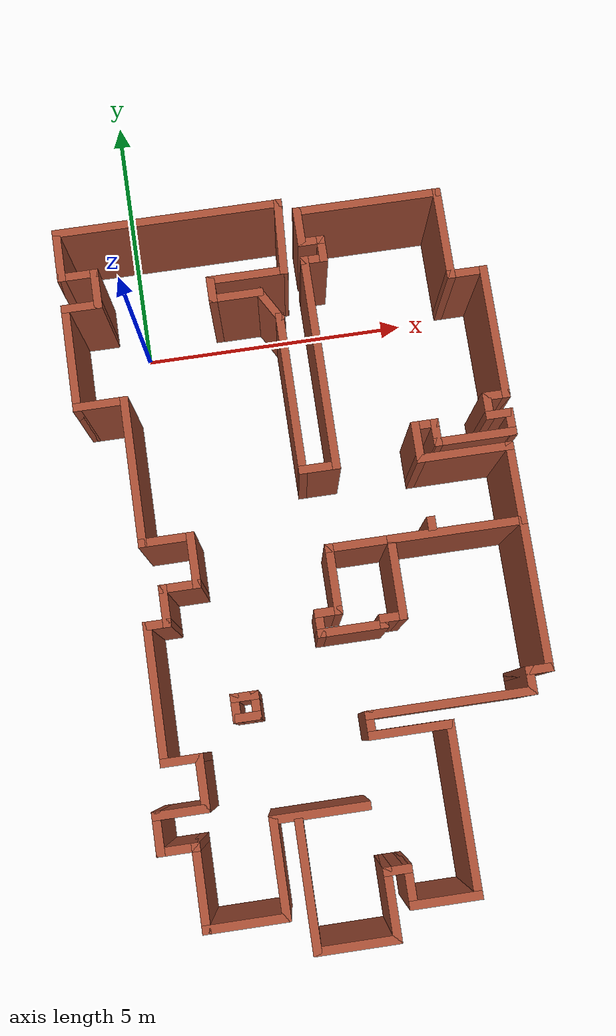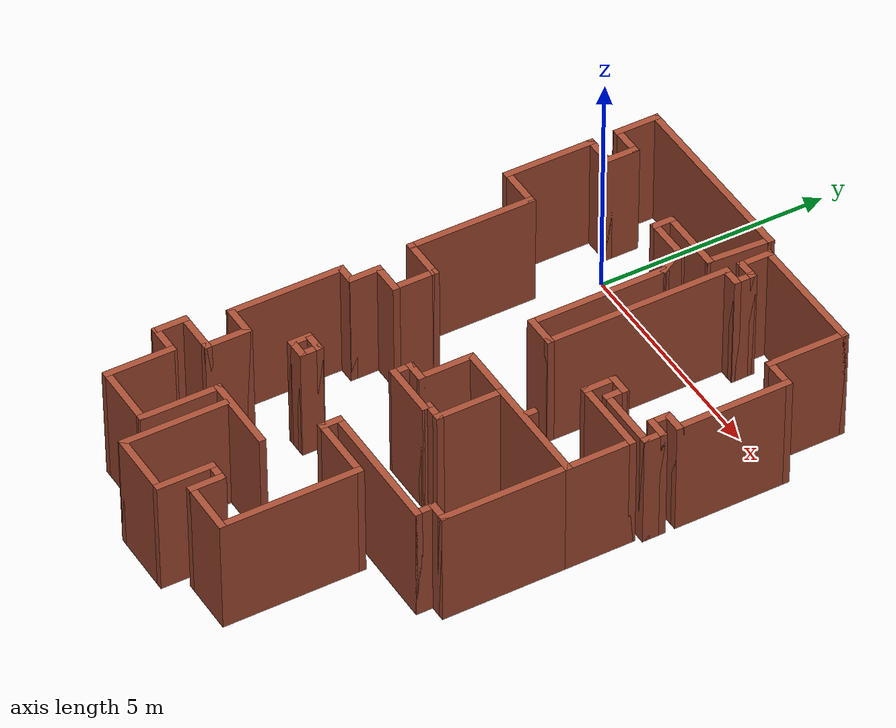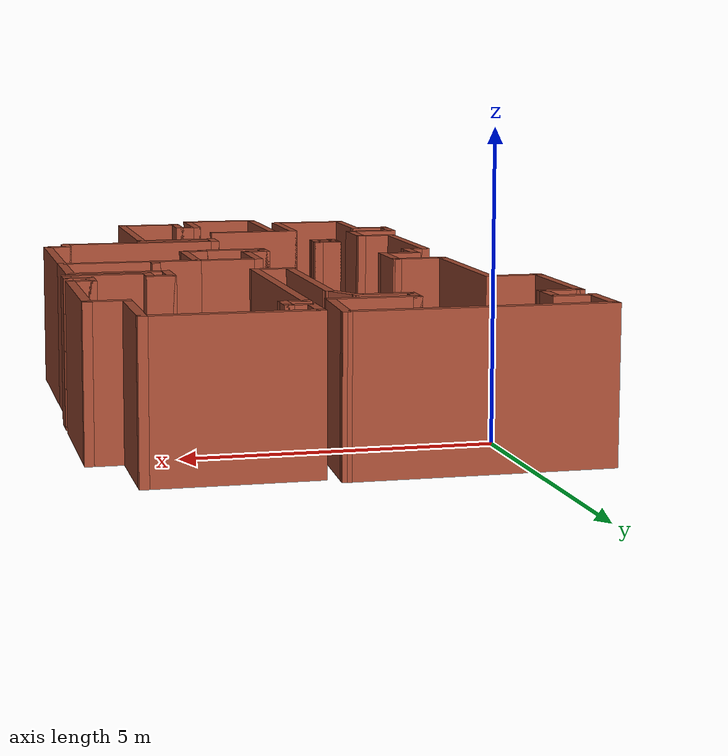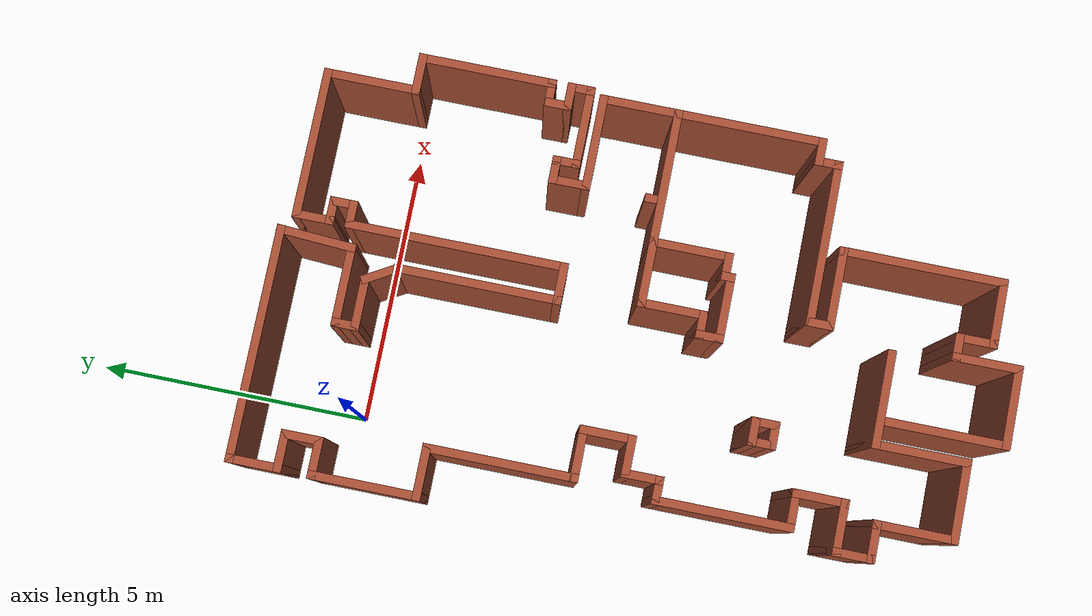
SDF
<?xml version='1.0'?>
<sdf version='1.6'>
  <model name='map_80'>
    <pose frame=''>2.57152 -4.62871 0 0 -0 0</pose>
    <link name='Wall_0'>
      <collision name='Wall_0_Collision'>
        <geometry>
          <box>
            <size>4.25 0.15 2.5</size>
          </box>
        </geometry>
        <pose frame=''>0 0 1.25 0 -0 0</pose>
      </collision>
      <visual name='Wall_0_Visual'>
        <pose frame=''>0 0 1.25 0 -0 0</pose>
        <geometry>
          <box>
            <size>4.25 0.15 2.5</size>
          </box>
        </geometry>
        <material>
          <script>
            <uri>file://media/materials/scripts/gazebo.material</uri>
            <name>Gazebo/Bricks</name>
          </script>
          <ambient>1 1 1 1</ambient>
        </material>
        <meta>
          <layer>0</layer>
        </meta>
      </visual>
      <pose frame=''>-1.76204 6.55295 0 0 -0 3.14159</pose>
    </link>
    <link name='Wall_1'>
      <collision name='Wall_1_Collision'>
        <geometry>
          <box>
            <size>1 0.15 2.5</size>
          </box>
        </geometry>
        <pose frame=''>0 0 1.25 0 -0 0</pose>
      </collision>
      <visual name='Wall_1_Visual'>
        <pose frame=''>0 0 1.25 0 -0 0</pose>
        <geometry>
          <box>
            <size>1 0.15 2.5</size>
          </box>
        </geometry>
        <material>
          <script>
            <uri>file://media/materials/scripts/gazebo.material</uri>
            <name>Gazebo/Bricks</name>
          </script>
          <ambient>1 1 1 1</ambient>
        </material>
        <meta>
          <layer>0</layer>
        </meta>
      </visual>
      <pose frame=''>-3.81204 6.12795 0 0 -0 -1.5708</pose>
    </link>
    <link name='Wall_10'>
      <collision name='Wall_10_Collision'>
        <geometry>
          <box>
            <size>0.75 0.15 2.5</size>
          </box>
        </geometry>
        <pose frame=''>0 0 1.25 0 -0 0</pose>
      </collision>
      <visual name='Wall_10_Visual'>
        <pose frame=''>0 0 1.25 0 -0 0</pose>
        <geometry>
          <box>
            <size>0.75 0.15 2.5</size>
          </box>
        </geometry>
        <material>
          <script>
            <uri>file://media/materials/scripts/gazebo.material</uri>
            <name>Gazebo/Bricks</name>
          </script>
          <ambient>1 1 1 1</ambient>
        </material>
        <meta>
          <layer>0</layer>
        </meta>
      </visual>
      <pose frame=''>-2.41204 -0.197053 0 0 -0 3.14159</pose>
    </link>
    <link name='Wall_104'>
      <collision name='Wall_104_Collision'>
        <geometry>
          <box>
            <size>0.25 0.15 2.5</size>
          </box>
        </geometry>
        <pose frame=''>0 0 1.25 0 -0 0</pose>
      </collision>
      <visual name='Wall_104_Visual'>
        <pose frame=''>0 0 1.25 0 -0 0</pose>
        <geometry>
          <box>
            <size>0.25 0.15 2.5</size>
          </box>
        </geometry>
        <material>
          <script>
            <uri>file://media/materials/scripts/gazebo.material</uri>
            <name>Gazebo/Bricks</name>
          </script>
          <ambient>1 1 1 1</ambient>
        </material>
        <meta>
          <layer>0</layer>
        </meta>
      </visual>
      <pose frame=''>1.01204 -1.30722 0 0 -0 -1.5708</pose>
    </link>
    <link name='Wall_105'>
      <collision name='Wall_105_Collision'>
        <geometry>
          <box>
            <size>1.25 0.15 2.5</size>
          </box>
        </geometry>
        <pose frame=''>0 0 1.25 0 -0 0</pose>
      </collision>
      <visual name='Wall_105_Visual'>
        <pose frame=''>0 0 1.25 0 -0 0</pose>
        <geometry>
          <box>
            <size>1.25 0.15 2.5</size>
          </box>
        </geometry>
        <material>
          <script>
            <uri>file://media/materials/scripts/gazebo.material</uri>
            <name>Gazebo/Bricks</name>
          </script>
          <ambient>1 1 1 1</ambient>
        </material>
        <meta>
          <layer>0</layer>
        </meta>
      </visual>
      <pose frame=''>0.462039 -1.35722 0 0 -0 3.14159</pose>
    </link>
    <link name='Wall_106'>
      <collision name='Wall_106_Collision'>
        <geometry>
          <box>
            <size>0.5 0.15 2.5</size>
          </box>
        </geometry>
        <pose frame=''>0 0 1.25 0 -0 0</pose>
      </collision>
      <visual name='Wall_106_Visual'>
        <pose frame=''>0 0 1.25 0 -0 0</pose>
        <geometry>
          <box>
            <size>0.5 0.15 2.5</size>
          </box>
        </geometry>
        <material>
          <script>
            <uri>file://media/materials/scripts/gazebo.material</uri>
            <name>Gazebo/Bricks</name>
          </script>
          <ambient>1 1 1 1</ambient>
        </material>
        <meta>
          <layer>0</layer>
        </meta>
      </visual>
      <pose frame=''>-0.087961 -1.18222 0 0 -0 1.5708</pose>
    </link>
    <link name='Wall_107'>
      <collision name='Wall_107_Collision'>
        <geometry>
          <box>
            <size>0.5 0.15 2.5</size>
          </box>
        </geometry>
        <pose frame=''>0 0 1.25 0 -0 0</pose>
      </collision>
      <visual name='Wall_107_Visual'>
        <pose frame=''>0 0 1.25 0 -0 0</pose>
        <geometry>
          <box>
            <size>0.5 0.15 2.5</size>
          </box>
        </geometry>
        <material>
          <script>
            <uri>file://media/materials/scripts/gazebo.material</uri>
            <name>Gazebo/Bricks</name>
          </script>
          <ambient>1 1 1 1</ambient>
        </material>
        <meta>
          <layer>0</layer>
        </meta>
      </visual>
      <pose frame=''>0.087039 -1.00722 0 0 -0 0</pose>
    </link>
    <link name='Wall_108'>
      <collision name='Wall_108_Collision'>
        <geometry>
          <box>
            <size>1.25 0.15 2.5</size>
          </box>
        </geometry>
        <pose frame=''>0 0 1.25 0 -0 0</pose>
      </collision>
      <visual name='Wall_108_Visual'>
        <pose frame=''>0 0 1.25 0 -0 0</pose>
        <geometry>
          <box>
            <size>1.25 0.15 2.5</size>
          </box>
        </geometry>
        <material>
          <script>
            <uri>file://media/materials/scripts/gazebo.material</uri>
            <name>Gazebo/Bricks</name>
          </script>
          <ambient>1 1 1 1</ambient>
        </material>
        <meta>
          <layer>0</layer>
        </meta>
      </visual>
      <pose frame=''>0.262039 -0.457222 0 0 -0 1.5708</pose>
    </link>
    <link name='Wall_11'>
      <collision name='Wall_11_Collision'>
        <geometry>
          <box>
            <size>0.75 0.15 2.5</size>
          </box>
        </geometry>
        <pose frame=''>0 0 1.25 0 -0 0</pose>
      </collision>
      <visual name='Wall_11_Visual'>
        <pose frame=''>0 0 1.25 0 -0 0</pose>
        <geometry>
          <box>
            <size>0.75 0.15 2.5</size>
          </box>
        </geometry>
        <material>
          <script>
            <uri>file://media/materials/scripts/gazebo.material</uri>
            <name>Gazebo/Bricks</name>
          </script>
          <ambient>1 1 1 1</ambient>
        </material>
        <meta>
          <layer>0</layer>
        </meta>
      </visual>
      <pose frame=''>-2.71204 -0.497053 0 0 -0 -1.5708</pose>
    </link>
    <link name='Wall_111'>
      <collision name='Wall_111_Collision'>
        <geometry>
          <box>
            <size>0.25 0.15 2.5</size>
          </box>
        </geometry>
        <pose frame=''>0 0 1.25 0 -0 0</pose>
      </collision>
      <visual name='Wall_111_Visual'>
        <pose frame=''>0 0 1.25 0 -0 0</pose>
        <geometry>
          <box>
            <size>0.25 0.15 2.5</size>
          </box>
        </geometry>
        <material>
          <script>
            <uri>file://media/materials/scripts/gazebo.material</uri>
            <name>Gazebo/Bricks</name>
          </script>
          <ambient>1 1 1 1</ambient>
        </material>
        <meta>
          <layer>0</layer>
        </meta>
      </visual>
      <pose frame=''>2.11528 0.265161 0 0 -0 1.5708</pose>
    </link>
    <link name='Wall_115'>
      <collision name='Wall_115_Collision'>
        <geometry>
          <box>
            <size>0.5 0.15 2.5</size>
          </box>
        </geometry>
        <pose frame=''>0 0 1.25 0 -0 0</pose>
      </collision>
      <visual name='Wall_115_Visual'>
        <pose frame=''>0 0 1.25 0 -0 0</pose>
        <geometry>
          <box>
            <size>0.5 0.15 2.5</size>
          </box>
        </geometry>
        <material>
          <script>
            <uri>file://media/materials/scripts/gazebo.material</uri>
            <name>Gazebo/Bricks</name>
          </script>
          <ambient>1 1 1 1</ambient>
        </material>
        <meta>
          <layer>0</layer>
        </meta>
      </visual>
      <pose frame=''>-1.38328 -2.41168 0 0 -0 1.5708</pose>
    </link>
    <link name='Wall_118'>
      <collision name='Wall_118_Collision'>
        <geometry>
          <box>
            <size>0.5 0.15 2.5</size>
          </box>
        </geometry>
        <pose frame=''>0 0 1.25 0 -0 0</pose>
      </collision>
      <visual name='Wall_118_Visual'>
        <pose frame=''>0 0 1.25 0 -0 0</pose>
        <geometry>
          <box>
            <size>0.5 0.15 2.5</size>
          </box>
        </geometry>
        <material>
          <script>
            <uri>file://media/materials/scripts/gazebo.material</uri>
            <name>Gazebo/Bricks</name>
          </script>
          <ambient>1 1 1 1</ambient>
        </material>
        <meta>
          <layer>0</layer>
        </meta>
      </visual>
      <pose frame=''>-1.55828 -2.23668 0 0 -0 3.14159</pose>
    </link>
    <link name='Wall_119'>
      <collision name='Wall_119_Collision'>
        <geometry>
          <box>
            <size>0.5 0.15 2.5</size>
          </box>
        </geometry>
        <pose frame=''>0 0 1.25 0 -0 0</pose>
      </collision>
      <visual name='Wall_119_Visual'>
        <pose frame=''>0 0 1.25 0 -0 0</pose>
        <geometry>
          <box>
            <size>0.5 0.15 2.5</size>
          </box>
        </geometry>
        <material>
          <script>
            <uri>file://media/materials/scripts/gazebo.material</uri>
            <name>Gazebo/Bricks</name>
          </script>
          <ambient>1 1 1 1</ambient>
        </material>
        <meta>
          <layer>0</layer>
        </meta>
      </visual>
      <pose frame=''>-1.73327 -2.41168 0 0 -0 -1.5708</pose>
    </link>
    <link name='Wall_12'>
      <collision name='Wall_12_Collision'>
        <geometry>
          <box>
            <size>0.5 0.15 2.5</size>
          </box>
        </geometry>
        <pose frame=''>0 0 1.25 0 -0 0</pose>
      </collision>
      <visual name='Wall_12_Visual'>
        <pose frame=''>0 0 1.25 0 -0 0</pose>
        <geometry>
          <box>
            <size>0.5 0.15 2.5</size>
          </box>
        </geometry>
        <material>
          <script>
            <uri>file://media/materials/scripts/gazebo.material</uri>
            <name>Gazebo/Bricks</name>
          </script>
          <ambient>1 1 1 1</ambient>
        </material>
        <meta>
          <layer>0</layer>
        </meta>
      </visual>
      <pose frame=''>-2.88704 -0.797053 0 0 -0 3.14159</pose>
    </link>
    <link name='Wall_120'>
      <collision name='Wall_120_Collision'>
        <geometry>
          <box>
            <size>0.5 0.15 2.5</size>
          </box>
        </geometry>
        <pose frame=''>0 0 1.25 0 -0 0</pose>
      </collision>
      <visual name='Wall_120_Visual'>
        <pose frame=''>0 0 1.25 0 -0 0</pose>
        <geometry>
          <box>
            <size>0.5 0.15 2.5</size>
          </box>
        </geometry>
        <material>
          <script>
            <uri>file://media/materials/scripts/gazebo.material</uri>
            <name>Gazebo/Bricks</name>
          </script>
          <ambient>1 1 1 1</ambient>
        </material>
        <meta>
          <layer>0</layer>
        </meta>
      </visual>
      <pose frame=''>-1.55828 -2.58668 0 0 -0 0</pose>
    </link>
    <link name='Wall_13'>
      <collision name='Wall_13_Collision'>
        <geometry>
          <box>
            <size>2.5 0.15 2.5</size>
          </box>
        </geometry>
        <pose frame=''>0 0 1.25 0 -0 0</pose>
      </collision>
      <visual name='Wall_13_Visual'>
        <pose frame=''>0 0 1.25 0 -0 0</pose>
        <geometry>
          <box>
            <size>2.5 0.15 2.5</size>
          </box>
        </geometry>
        <material>
          <script>
            <uri>file://media/materials/scripts/gazebo.material</uri>
            <name>Gazebo/Bricks</name>
          </script>
          <ambient>1 1 1 1</ambient>
        </material>
        <meta>
          <layer>0</layer>
        </meta>
      </visual>
      <pose frame=''>-3.06204 -1.97205 0 0 -0 -1.5708</pose>
    </link>
    <link name='Wall_2'>
      <collision name='Wall_2_Collision'>
        <geometry>
          <box>
            <size>0.75 0.15 2.5</size>
          </box>
        </geometry>
        <pose frame=''>0 0 1.25 0 -0 0</pose>
      </collision>
      <visual name='Wall_2_Visual'>
        <pose frame=''>0 0 1.25 0 -0 0</pose>
        <geometry>
          <box>
            <size>0.75 0.15 2.5</size>
          </box>
        </geometry>
        <material>
          <script>
            <uri>file://media/materials/scripts/gazebo.material</uri>
            <name>Gazebo/Bricks</name>
          </script>
          <ambient>1 1 1 1</ambient>
        </material>
        <meta>
          <layer>0</layer>
        </meta>
      </visual>
      <pose frame=''>-3.51204 5.70295 0 0 -0 0</pose>
    </link>
    <link name='Wall_21'>
      <collision name='Wall_21_Collision'>
        <geometry>
          <box>
            <size>1.75 0.15 2.5</size>
          </box>
        </geometry>
        <pose frame=''>0 0 1.25 0 -0 0</pose>
      </collision>
      <visual name='Wall_21_Visual'>
        <pose frame=''>0 0 1.25 0 -0 0</pose>
        <geometry>
          <box>
            <size>1.75 0.15 2.5</size>
          </box>
        </geometry>
        <material>
          <script>
            <uri>file://media/materials/scripts/gazebo.material</uri>
            <name>Gazebo/Bricks</name>
          </script>
          <ambient>1 1 1 1</ambient>
        </material>
        <meta>
          <layer>0</layer>
        </meta>
      </visual>
      <pose frame=''>-1.36204 -5.14705 0 0 -0 1.5708</pose>
    </link>
    <link name='Wall_22'>
      <collision name='Wall_22_Collision'>
        <geometry>
          <box>
            <size>1.75 0.15 2.5</size>
          </box>
        </geometry>
        <pose frame=''>0 0 1.25 0 -0 0</pose>
      </collision>
      <visual name='Wall_22_Visual'>
        <pose frame=''>0 0 1.25 0 -0 0</pose>
        <geometry>
          <box>
            <size>1.75 0.15 2.5</size>
          </box>
        </geometry>
        <material>
          <script>
            <uri>file://media/materials/scripts/gazebo.material</uri>
            <name>Gazebo/Bricks</name>
          </script>
          <ambient>1 1 1 1</ambient>
        </material>
        <meta>
          <layer>0</layer>
        </meta>
      </visual>
      <pose frame=''>-0.562039 -4.34705 0 0 -0 0</pose>
    </link>
    <link name='Wall_25'>
      <collision name='Wall_25_Collision'>
        <geometry>
          <box>
            <size>2.25 0.15 2.5</size>
          </box>
        </geometry>
        <pose frame=''>0 0 1.25 0 -0 0</pose>
      </collision>
      <visual name='Wall_25_Visual'>
        <pose frame=''>0 0 1.25 0 -0 0</pose>
        <geometry>
          <box>
            <size>2.25 0.15 2.5</size>
          </box>
        </geometry>
        <material>
          <script>
            <uri>file://media/materials/scripts/gazebo.material</uri>
            <name>Gazebo/Bricks</name>
          </script>
          <ambient>1 1 1 1</ambient>
        </material>
        <meta>
          <layer>0</layer>
        </meta>
      </visual>
      <pose frame=''>-0.937961 -5.50722 0 0 -0 -1.5708</pose>
    </link>
    <link name='Wall_26'>
      <collision name='Wall_26_Collision'>
        <geometry>
          <box>
            <size>1.5 0.15 2.5</size>
          </box>
        </geometry>
        <pose frame=''>0 0 1.25 0 -0 0</pose>
      </collision>
      <visual name='Wall_26_Visual'>
        <pose frame=''>0 0 1.25 0 -0 0</pose>
        <geometry>
          <box>
            <size>1.5 0.15 2.5</size>
          </box>
        </geometry>
        <material>
          <script>
            <uri>file://media/materials/scripts/gazebo.material</uri>
            <name>Gazebo/Bricks</name>
          </script>
          <ambient>1 1 1 1</ambient>
        </material>
        <meta>
          <layer>0</layer>
        </meta>
      </visual>
      <pose frame=''>-0.262961 -6.55722 0 0 -0 0</pose>
    </link>
    <link name='Wall_3'>
      <collision name='Wall_3_Collision'>
        <geometry>
          <box>
            <size>0.75 0.15 2.5</size>
          </box>
        </geometry>
        <pose frame=''>0 0 1.25 0 -0 0</pose>
      </collision>
      <visual name='Wall_3_Visual'>
        <pose frame=''>0 0 1.25 0 -0 0</pose>
        <geometry>
          <box>
            <size>0.75 0.15 2.5</size>
          </box>
        </geometry>
        <material>
          <script>
            <uri>file://media/materials/scripts/gazebo.material</uri>
            <name>Gazebo/Bricks</name>
          </script>
          <ambient>1 1 1 1</ambient>
        </material>
        <meta>
          <layer>0</layer>
        </meta>
      </visual>
      <pose frame=''>-3.21204 5.40295 0 0 -0 -1.5708</pose>
    </link>
    <link name='Wall_32'>
      <collision name='Wall_32_Collision'>
        <geometry>
          <box>
            <size>1.25 0.15 2.5</size>
          </box>
        </geometry>
        <pose frame=''>0 0 1.25 0 -0 0</pose>
      </collision>
      <visual name='Wall_32_Visual'>
        <pose frame=''>0 0 1.25 0 -0 0</pose>
        <geometry>
          <box>
            <size>1.25 0.15 2.5</size>
          </box>
        </geometry>
        <material>
          <script>
            <uri>file://media/materials/scripts/gazebo.material</uri>
            <name>Gazebo/Bricks</name>
          </script>
          <ambient>1 1 1 1</ambient>
        </material>
        <meta>
          <layer>0</layer>
        </meta>
      </visual>
      <pose frame=''>1.31204 -6.05722 0 0 -0 0</pose>
    </link>
    <link name='Wall_33'>
      <collision name='Wall_33_Collision'>
        <geometry>
          <box>
            <size>3 0.15 2.5</size>
          </box>
        </geometry>
        <pose frame=''>0 0 1.25 0 -0 0</pose>
      </collision>
      <visual name='Wall_33_Visual'>
        <pose frame=''>0 0 1.25 0 -0 0</pose>
        <geometry>
          <box>
            <size>3 0.15 2.5</size>
          </box>
        </geometry>
        <material>
          <script>
            <uri>file://media/materials/scripts/gazebo.material</uri>
            <name>Gazebo/Bricks</name>
          </script>
          <ambient>1 1 1 1</ambient>
        </material>
        <meta>
          <layer>0</layer>
        </meta>
      </visual>
      <pose frame=''>1.86204 -4.63222 0 0 -0 1.5708</pose>
    </link>
    <link name='Wall_34'>
      <collision name='Wall_34_Collision'>
        <geometry>
          <box>
            <size>1.5 0.15 2.5</size>
          </box>
        </geometry>
        <pose frame=''>0 0 1.25 0 -0 0</pose>
      </collision>
      <visual name='Wall_34_Visual'>
        <pose frame=''>0 0 1.25 0 -0 0</pose>
        <geometry>
          <box>
            <size>1.5 0.15 2.5</size>
          </box>
        </geometry>
        <material>
          <script>
            <uri>file://media/materials/scripts/gazebo.material</uri>
            <name>Gazebo/Bricks</name>
          </script>
          <ambient>1 1 1 1</ambient>
        </material>
        <meta>
          <layer>0</layer>
        </meta>
      </visual>
      <pose frame=''>1.18704 -3.20722 0 0 -0 3.14159</pose>
    </link>
    <link name='Wall_35'>
      <collision name='Wall_35_Collision'>
        <geometry>
          <box>
            <size>0.5 0.15 2.5</size>
          </box>
        </geometry>
        <pose frame=''>0 0 1.25 0 -0 0</pose>
      </collision>
      <visual name='Wall_35_Visual'>
        <pose frame=''>0 0 1.25 0 -0 0</pose>
        <geometry>
          <box>
            <size>0.5 0.15 2.5</size>
          </box>
        </geometry>
        <material>
          <script>
            <uri>file://media/materials/scripts/gazebo.material</uri>
            <name>Gazebo/Bricks</name>
          </script>
          <ambient>1 1 1 1</ambient>
        </material>
        <meta>
          <layer>0</layer>
        </meta>
      </visual>
      <pose frame=''>0.512039 -3.03222 0 0 -0 1.5708</pose>
    </link>
    <link name='Wall_36'>
      <collision name='Wall_36_Collision'>
        <geometry>
          <box>
            <size>3 0.15 2.5</size>
          </box>
        </geometry>
        <pose frame=''>0 0 1.25 0 -0 0</pose>
      </collision>
      <visual name='Wall_36_Visual'>
        <pose frame=''>0 0 1.25 0 -0 0</pose>
        <geometry>
          <box>
            <size>3 0.15 2.5</size>
          </box>
        </geometry>
        <material>
          <script>
            <uri>file://media/materials/scripts/gazebo.material</uri>
            <name>Gazebo/Bricks</name>
          </script>
          <ambient>1 1 1 1</ambient>
        </material>
        <meta>
          <layer>0</layer>
        </meta>
      </visual>
      <pose frame=''>1.93704 -2.85722 0 0 -0 0</pose>
    </link>
    <link name='Wall_37'>
      <collision name='Wall_37_Collision'>
        <geometry>
          <box>
            <size>0.5 0.15 2.5</size>
          </box>
        </geometry>
        <pose frame=''>0 0 1.25 0 -0 0</pose>
      </collision>
      <visual name='Wall_37_Visual'>
        <pose frame=''>0 0 1.25 0 -0 0</pose>
        <geometry>
          <box>
            <size>0.5 0.15 2.5</size>
          </box>
        </geometry>
        <material>
          <script>
            <uri>file://media/materials/scripts/gazebo.material</uri>
            <name>Gazebo/Bricks</name>
          </script>
          <ambient>1 1 1 1</ambient>
        </material>
        <meta>
          <layer>0</layer>
        </meta>
      </visual>
      <pose frame=''>3.36204 -2.68222 0 0 -0 1.5708</pose>
    </link>
    <link name='Wall_38'>
      <collision name='Wall_38_Collision'>
        <geometry>
          <box>
            <size>0.5 0.15 2.5</size>
          </box>
        </geometry>
        <pose frame=''>0 0 1.25 0 -0 0</pose>
      </collision>
      <visual name='Wall_38_Visual'>
        <pose frame=''>0 0 1.25 0 -0 0</pose>
        <geometry>
          <box>
            <size>0.5 0.15 2.5</size>
          </box>
        </geometry>
        <material>
          <script>
            <uri>file://media/materials/scripts/gazebo.material</uri>
            <name>Gazebo/Bricks</name>
          </script>
          <ambient>1 1 1 1</ambient>
        </material>
        <meta>
          <layer>0</layer>
        </meta>
      </visual>
      <pose frame=''>3.53704 -2.50722 0 0 -0 0</pose>
    </link>
    <link name='Wall_4'>
      <collision name='Wall_4_Collision'>
        <geometry>
          <box>
            <size>0.75 0.15 2.5</size>
          </box>
        </geometry>
        <pose frame=''>0 0 1.25 0 -0 0</pose>
      </collision>
      <visual name='Wall_4_Visual'>
        <pose frame=''>0 0 1.25 0 -0 0</pose>
        <geometry>
          <box>
            <size>0.75 0.15 2.5</size>
          </box>
        </geometry>
        <material>
          <script>
            <uri>file://media/materials/scripts/gazebo.material</uri>
            <name>Gazebo/Bricks</name>
          </script>
          <ambient>1 1 1 1</ambient>
        </material>
        <meta>
          <layer>0</layer>
        </meta>
      </visual>
      <pose frame=''>-3.51204 5.10295 0 0 -0 3.14159</pose>
    </link>
    <link name='Wall_40'>
      <collision name='Wall_40_Collision'>
        <geometry>
          <box>
            <size>1.25 0.15 2.5</size>
          </box>
        </geometry>
        <pose frame=''>0 0 1.25 0 -0 0</pose>
      </collision>
      <visual name='Wall_40_Visual'>
        <pose frame=''>0 0 1.25 0 -0 0</pose>
        <geometry>
          <box>
            <size>1.25 0.15 2.5</size>
          </box>
        </geometry>
        <material>
          <script>
            <uri>file://media/materials/scripts/gazebo.material</uri>
            <name>Gazebo/Bricks</name>
          </script>
          <ambient>1 1 1 1</ambient>
        </material>
        <meta>
          <layer>0</layer>
        </meta>
      </visual>
      <pose frame=''>0.412039 -6.00722 0 0 -0 1.5708</pose>
    </link>
    <link name='Wall_41'>
      <collision name='Wall_41_Collision'>
        <geometry>
          <box>
            <size>0.5 0.15 2.5</size>
          </box>
        </geometry>
        <pose frame=''>0 0 1.25 0 -0 0</pose>
      </collision>
      <visual name='Wall_41_Visual'>
        <pose frame=''>0 0 1.25 0 -0 0</pose>
        <geometry>
          <box>
            <size>0.5 0.15 2.5</size>
          </box>
        </geometry>
        <material>
          <script>
            <uri>file://media/materials/scripts/gazebo.material</uri>
            <name>Gazebo/Bricks</name>
          </script>
          <ambient>1 1 1 1</ambient>
        </material>
        <meta>
          <layer>0</layer>
        </meta>
      </visual>
      <pose frame=''>0.587039 -5.45722 0 0 -0 0</pose>
    </link>
    <link name='Wall_42'>
      <collision name='Wall_42_Collision'>
        <geometry>
          <box>
            <size>0.75 0.15 2.5</size>
          </box>
        </geometry>
        <pose frame=''>0 0 1.25 0 -0 0</pose>
      </collision>
      <visual name='Wall_42_Visual'>
        <pose frame=''>0 0 1.25 0 -0 0</pose>
        <geometry>
          <box>
            <size>0.75 0.15 2.5</size>
          </box>
        </geometry>
        <material>
          <script>
            <uri>file://media/materials/scripts/gazebo.material</uri>
            <name>Gazebo/Bricks</name>
          </script>
          <ambient>1 1 1 1</ambient>
        </material>
        <meta>
          <layer>0</layer>
        </meta>
      </visual>
      <pose frame=''>0.762039 -5.75722 0 0 -0 -1.5708</pose>
    </link>
    <link name='Wall_44'>
      <collision name='Wall_44_Collision'>
        <geometry>
          <box>
            <size>2.75 0.15 2.5</size>
          </box>
        </geometry>
        <pose frame=''>0 0 1.25 0 -0 0</pose>
      </collision>
      <visual name='Wall_44_Visual'>
        <pose frame=''>0 0 1.25 0 -0 0</pose>
        <geometry>
          <box>
            <size>2.75 0.15 2.5</size>
          </box>
        </geometry>
        <material>
          <script>
            <uri>file://media/materials/scripts/gazebo.material</uri>
            <name>Gazebo/Bricks</name>
          </script>
          <ambient>1 1 1 1</ambient>
        </material>
        <meta>
          <layer>0</layer>
        </meta>
      </visual>
      <pose frame=''>3.71204 -1.20722 0 0 -0 1.5708</pose>
    </link>
    <link name='Wall_45'>
      <collision name='Wall_45_Collision'>
        <geometry>
          <box>
            <size>2.5 0.15 2.5</size>
          </box>
        </geometry>
        <pose frame=''>0 0 1.25 0 -0 0</pose>
      </collision>
      <visual name='Wall_45_Visual'>
        <pose frame=''>0 0 1.25 0 -0 0</pose>
        <geometry>
          <box>
            <size>2.5 0.15 2.5</size>
          </box>
        </geometry>
        <material>
          <script>
            <uri>file://media/materials/scripts/gazebo.material</uri>
            <name>Gazebo/Bricks</name>
          </script>
          <ambient>1 1 1 1</ambient>
        </material>
        <meta>
          <layer>0</layer>
        </meta>
      </visual>
      <pose frame=''>2.53704 0.092778 0 0 -0 3.14159</pose>
    </link>
    <link name='Wall_46'>
      <collision name='Wall_46_Collision'>
        <geometry>
          <box>
            <size>1.5 0.15 2.5</size>
          </box>
        </geometry>
        <pose frame=''>0 0 1.25 0 -0 0</pose>
      </collision>
      <visual name='Wall_46_Visual'>
        <pose frame=''>0 0 1.25 0 -0 0</pose>
        <geometry>
          <box>
            <size>1.5 0.15 2.5</size>
          </box>
        </geometry>
        <material>
          <script>
            <uri>file://media/materials/scripts/gazebo.material</uri>
            <name>Gazebo/Bricks</name>
          </script>
          <ambient>1 1 1 1</ambient>
        </material>
        <meta>
          <layer>0</layer>
        </meta>
      </visual>
      <pose frame=''>1.36204 -0.582222 0 0 -0 -1.5708</pose>
    </link>
    <link name='Wall_47'>
      <collision name='Wall_47_Collision'>
        <geometry>
          <box>
            <size>0.5 0.15 2.5</size>
          </box>
        </geometry>
        <pose frame=''>0 0 1.25 0 -0 0</pose>
      </collision>
      <visual name='Wall_47_Visual'>
        <pose frame=''>0 0 1.25 0 -0 0</pose>
        <geometry>
          <box>
            <size>0.5 0.15 2.5</size>
          </box>
        </geometry>
        <material>
          <script>
            <uri>file://media/materials/scripts/gazebo.material</uri>
            <name>Gazebo/Bricks</name>
          </script>
          <ambient>1 1 1 1</ambient>
        </material>
        <meta>
          <layer>0</layer>
        </meta>
      </visual>
      <pose frame=''>1.18704 -1.25722 0 0 -0 3.14159</pose>
    </link>
    <link name='Wall_5'>
      <collision name='Wall_5_Collision'>
        <geometry>
          <box>
            <size>2 0.15 2.5</size>
          </box>
        </geometry>
        <pose frame=''>0 0 1.25 0 -0 0</pose>
      </collision>
      <visual name='Wall_5_Visual'>
        <pose frame=''>0 0 1.25 0 -0 0</pose>
        <geometry>
          <box>
            <size>2 0.15 2.5</size>
          </box>
        </geometry>
        <material>
          <script>
            <uri>file://media/materials/scripts/gazebo.material</uri>
            <name>Gazebo/Bricks</name>
          </script>
          <ambient>1 1 1 1</ambient>
        </material>
        <meta>
          <layer>0</layer>
        </meta>
      </visual>
      <pose frame=''>-3.81204 4.17795 0 0 -0 -1.5708</pose>
    </link>
    <link name='Wall_58'>
      <collision name='Wall_58_Collision'>
        <geometry>
          <box>
            <size>1.25 0.15 2.5</size>
          </box>
        </geometry>
        <pose frame=''>0 0 1.25 0 -0 0</pose>
      </collision>
      <visual name='Wall_58_Visual'>
        <pose frame=''>0 0 1.25 0 -0 0</pose>
        <geometry>
          <box>
            <size>1.25 0.15 2.5</size>
          </box>
        </geometry>
        <material>
          <script>
            <uri>file://media/materials/scripts/gazebo.material</uri>
            <name>Gazebo/Bricks</name>
          </script>
          <ambient>1 1 1 1</ambient>
        </material>
        <meta>
          <layer>0</layer>
        </meta>
      </visual>
      <pose frame=''>0.812039 0.092778 0 0 -0 0</pose>
    </link>
    <link name='Wall_6'>
      <collision name='Wall_6_Collision'>
        <geometry>
          <box>
            <size>1 0.15 2.5</size>
          </box>
        </geometry>
        <pose frame=''>0 0 1.25 0 -0 0</pose>
      </collision>
      <visual name='Wall_6_Visual'>
        <pose frame=''>0 0 1.25 0 -0 0</pose>
        <geometry>
          <box>
            <size>1 0.15 2.5</size>
          </box>
        </geometry>
        <material>
          <script>
            <uri>file://media/materials/scripts/gazebo.material</uri>
            <name>Gazebo/Bricks</name>
          </script>
          <ambient>1 1 1 1</ambient>
        </material>
        <meta>
          <layer>0</layer>
        </meta>
      </visual>
      <pose frame=''>-3.38704 3.25295 0 0 -0 0</pose>
    </link>
    <link name='Wall_62'>
      <collision name='Wall_62_Collision'>
        <geometry>
          <box>
            <size>1.5 0.15 2.5</size>
          </box>
        </geometry>
        <pose frame=''>0 0 1.25 0 -0 0</pose>
      </collision>
      <visual name='Wall_62_Visual'>
        <pose frame=''>0 0 1.25 0 -0 0</pose>
        <geometry>
          <box>
            <size>1.5 0.15 2.5</size>
          </box>
        </geometry>
        <material>
          <script>
            <uri>file://media/materials/scripts/gazebo.material</uri>
            <name>Gazebo/Bricks</name>
          </script>
          <ambient>1 1 1 1</ambient>
        </material>
        <meta>
          <layer>0</layer>
        </meta>
      </visual>
      <pose frame=''>3.71204 0.767778 0 0 -0 1.5708</pose>
    </link>
    <link name='Wall_64'>
      <collision name='Wall_64_Collision'>
        <geometry>
          <box>
            <size>1.75 0.15 2.5</size>
          </box>
        </geometry>
        <pose frame=''>0 0 1.25 0 -0 0</pose>
      </collision>
      <visual name='Wall_64_Visual'>
        <pose frame=''>0 0 1.25 0 -0 0</pose>
        <geometry>
          <box>
            <size>1.75 0.15 2.5</size>
          </box>
        </geometry>
        <material>
          <script>
            <uri>file://media/materials/scripts/gazebo.material</uri>
            <name>Gazebo/Bricks</name>
          </script>
          <ambient>1 1 1 1</ambient>
        </material>
        <meta>
          <layer>0</layer>
        </meta>
      </visual>
      <pose frame=''>2.91204 1.44278 0 0 -0 3.14159</pose>
    </link>
    <link name='Wall_67'>
      <collision name='Wall_67_Collision'>
        <geometry>
          <box>
            <size>0.75 0.15 2.5</size>
          </box>
        </geometry>
        <pose frame=''>0 0 1.25 0 -0 0</pose>
      </collision>
      <visual name='Wall_67_Visual'>
        <pose frame=''>0 0 1.25 0 -0 0</pose>
        <geometry>
          <box>
            <size>0.75 0.15 2.5</size>
          </box>
        </geometry>
        <material>
          <script>
            <uri>file://media/materials/scripts/gazebo.material</uri>
            <name>Gazebo/Bricks</name>
          </script>
          <ambient>1 1 1 1</ambient>
        </material>
        <meta>
          <layer>0</layer>
        </meta>
      </visual>
      <pose frame=''>2.11204 1.74278 0 0 -0 1.5708</pose>
    </link>
    <link name='Wall_68'>
      <collision name='Wall_68_Collision'>
        <geometry>
          <box>
            <size>0.5 0.15 2.5</size>
          </box>
        </geometry>
        <pose frame=''>0 0 1.25 0 -0 0</pose>
      </collision>
      <visual name='Wall_68_Visual'>
        <pose frame=''>0 0 1.25 0 -0 0</pose>
        <geometry>
          <box>
            <size>0.5 0.15 2.5</size>
          </box>
        </geometry>
        <material>
          <script>
            <uri>file://media/materials/scripts/gazebo.material</uri>
            <name>Gazebo/Bricks</name>
          </script>
          <ambient>1 1 1 1</ambient>
        </material>
        <meta>
          <layer>0</layer>
        </meta>
      </visual>
      <pose frame=''>2.28704 2.04278 0 0 -0 0</pose>
    </link>
    <link name='Wall_69'>
      <collision name='Wall_69_Collision'>
        <geometry>
          <box>
            <size>0.5 0.15 2.5</size>
          </box>
        </geometry>
        <pose frame=''>0 0 1.25 0 -0 0</pose>
      </collision>
      <visual name='Wall_69_Visual'>
        <pose frame=''>0 0 1.25 0 -0 0</pose>
        <geometry>
          <box>
            <size>0.5 0.15 2.5</size>
          </box>
        </geometry>
        <material>
          <script>
            <uri>file://media/materials/scripts/gazebo.material</uri>
            <name>Gazebo/Bricks</name>
          </script>
          <ambient>1 1 1 1</ambient>
        </material>
        <meta>
          <layer>0</layer>
        </meta>
      </visual>
      <pose frame=''>2.46204 1.86778 0 0 -0 -1.5708</pose>
    </link>
    <link name='Wall_7'>
      <collision name='Wall_7_Collision'>
        <geometry>
          <box>
            <size>2.75 0.15 2.5</size>
          </box>
        </geometry>
        <pose frame=''>0 0 1.25 0 -0 0</pose>
      </collision>
      <visual name='Wall_7_Visual'>
        <pose frame=''>0 0 1.25 0 -0 0</pose>
        <geometry>
          <box>
            <size>2.75 0.15 2.5</size>
          </box>
        </geometry>
        <material>
          <script>
            <uri>file://media/materials/scripts/gazebo.material</uri>
            <name>Gazebo/Bricks</name>
          </script>
          <ambient>1 1 1 1</ambient>
        </material>
        <meta>
          <layer>0</layer>
        </meta>
      </visual>
      <pose frame=''>-2.96204 1.95295 0 0 -0 -1.5708</pose>
    </link>
    <link name='Wall_70'>
      <collision name='Wall_70_Collision'>
        <geometry>
          <box>
            <size>1.5 0.15 2.5</size>
          </box>
        </geometry>
        <pose frame=''>0 0 1.25 0 -0 0</pose>
      </collision>
      <visual name='Wall_70_Visual'>
        <pose frame=''>0 0 1.25 0 -0 0</pose>
        <geometry>
          <box>
            <size>1.5 0.15 2.5</size>
          </box>
        </geometry>
        <material>
          <script>
            <uri>file://media/materials/scripts/gazebo.material</uri>
            <name>Gazebo/Bricks</name>
          </script>
          <ambient>1 1 1 1</ambient>
        </material>
        <meta>
          <layer>0</layer>
        </meta>
      </visual>
      <pose frame=''>3.13704 1.69278 0 0 -0 0</pose>
    </link>
    <link name='Wall_71'>
      <collision name='Wall_71_Collision'>
        <geometry>
          <box>
            <size>0.5 0.15 2.5</size>
          </box>
        </geometry>
        <pose frame=''>0 0 1.25 0 -0 0</pose>
      </collision>
      <visual name='Wall_71_Visual'>
        <pose frame=''>0 0 1.25 0 -0 0</pose>
        <geometry>
          <box>
            <size>0.5 0.15 2.5</size>
          </box>
        </geometry>
        <material>
          <script>
            <uri>file://media/materials/scripts/gazebo.material</uri>
            <name>Gazebo/Bricks</name>
          </script>
          <ambient>1 1 1 1</ambient>
        </material>
        <meta>
          <layer>0</layer>
        </meta>
      </visual>
      <pose frame=''>3.81204 1.86778 0 0 -0 1.5708</pose>
    </link>
    <link name='Wall_72'>
      <collision name='Wall_72_Collision'>
        <geometry>
          <box>
            <size>0.5 0.15 2.5</size>
          </box>
        </geometry>
        <pose frame=''>0 0 1.25 0 -0 0</pose>
      </collision>
      <visual name='Wall_72_Visual'>
        <pose frame=''>0 0 1.25 0 -0 0</pose>
        <geometry>
          <box>
            <size>0.5 0.15 2.5</size>
          </box>
        </geometry>
        <material>
          <script>
            <uri>file://media/materials/scripts/gazebo.material</uri>
            <name>Gazebo/Bricks</name>
          </script>
          <ambient>1 1 1 1</ambient>
        </material>
        <meta>
          <layer>0</layer>
        </meta>
      </visual>
      <pose frame=''>3.63704 2.04278 0 0 -0 3.14159</pose>
    </link>
    <link name='Wall_73'>
      <collision name='Wall_73_Collision'>
        <geometry>
          <box>
            <size>0.5 0.15 2.5</size>
          </box>
        </geometry>
        <pose frame=''>0 0 1.25 0 -0 0</pose>
      </collision>
      <visual name='Wall_73_Visual'>
        <pose frame=''>0 0 1.25 0 -0 0</pose>
        <geometry>
          <box>
            <size>0.5 0.15 2.5</size>
          </box>
        </geometry>
        <material>
          <script>
            <uri>file://media/materials/scripts/gazebo.material</uri>
            <name>Gazebo/Bricks</name>
          </script>
          <ambient>1 1 1 1</ambient>
        </material>
        <meta>
          <layer>0</layer>
        </meta>
      </visual>
      <pose frame=''>3.46204 2.21778 0 0 -0 1.5708</pose>
    </link>
    <link name='Wall_74'>
      <collision name='Wall_74_Collision'>
        <geometry>
          <box>
            <size>0.5 0.15 2.5</size>
          </box>
        </geometry>
        <pose frame=''>0 0 1.25 0 -0 0</pose>
      </collision>
      <visual name='Wall_74_Visual'>
        <pose frame=''>0 0 1.25 0 -0 0</pose>
        <geometry>
          <box>
            <size>0.5 0.15 2.5</size>
          </box>
        </geometry>
        <material>
          <script>
            <uri>file://media/materials/scripts/gazebo.material</uri>
            <name>Gazebo/Bricks</name>
          </script>
          <ambient>1 1 1 1</ambient>
        </material>
        <meta>
          <layer>0</layer>
        </meta>
      </visual>
      <pose frame=''>3.63704 2.39278 0 0 -0 0</pose>
    </link>
    <link name='Wall_75'>
      <collision name='Wall_75_Collision'>
        <geometry>
          <box>
            <size>2.5 0.15 2.5</size>
          </box>
        </geometry>
        <pose frame=''>0 0 1.25 0 -0 0</pose>
      </collision>
      <visual name='Wall_75_Visual'>
        <pose frame=''>0 0 1.25 0 -0 0</pose>
        <geometry>
          <box>
            <size>2.5 0.15 2.5</size>
          </box>
        </geometry>
        <material>
          <script>
            <uri>file://media/materials/scripts/gazebo.material</uri>
            <name>Gazebo/Bricks</name>
          </script>
          <ambient>1 1 1 1</ambient>
        </material>
        <meta>
          <layer>0</layer>
        </meta>
      </visual>
      <pose frame=''>3.81204 3.56778 0 0 -0 1.5708</pose>
    </link>
    <link name='Wall_76'>
      <collision name='Wall_76_Collision'>
        <geometry>
          <box>
            <size>0.75 0.15 2.5</size>
          </box>
        </geometry>
        <pose frame=''>0 0 1.25 0 -0 0</pose>
      </collision>
      <visual name='Wall_76_Visual'>
        <pose frame=''>0 0 1.25 0 -0 0</pose>
        <geometry>
          <box>
            <size>0.75 0.15 2.5</size>
          </box>
        </geometry>
        <material>
          <script>
            <uri>file://media/materials/scripts/gazebo.material</uri>
            <name>Gazebo/Bricks</name>
          </script>
          <ambient>1 1 1 1</ambient>
        </material>
        <meta>
          <layer>0</layer>
        </meta>
      </visual>
      <pose frame=''>3.51204 4.74278 0 0 -0 3.14159</pose>
    </link>
    <link name='Wall_77'>
      <collision name='Wall_77_Collision'>
        <geometry>
          <box>
            <size>1.75 0.15 2.5</size>
          </box>
        </geometry>
        <pose frame=''>0 0 1.25 0 -0 0</pose>
      </collision>
      <visual name='Wall_77_Visual'>
        <pose frame=''>0 0 1.25 0 -0 0</pose>
        <geometry>
          <box>
            <size>1.75 0.15 2.5</size>
          </box>
        </geometry>
        <material>
          <script>
            <uri>file://media/materials/scripts/gazebo.material</uri>
            <name>Gazebo/Bricks</name>
          </script>
          <ambient>1 1 1 1</ambient>
        </material>
        <meta>
          <layer>0</layer>
        </meta>
      </visual>
      <pose frame=''>3.21204 5.54278 0 0 -0 1.5708</pose>
    </link>
    <link name='Wall_78'>
      <collision name='Wall_78_Collision'>
        <geometry>
          <box>
            <size>2.75 0.15 2.5</size>
          </box>
        </geometry>
        <pose frame=''>0 0 1.25 0 -0 0</pose>
      </collision>
      <visual name='Wall_78_Visual'>
        <pose frame=''>0 0 1.25 0 -0 0</pose>
        <geometry>
          <box>
            <size>2.75 0.15 2.5</size>
          </box>
        </geometry>
        <material>
          <script>
            <uri>file://media/materials/scripts/gazebo.material</uri>
            <name>Gazebo/Bricks</name>
          </script>
          <ambient>1 1 1 1</ambient>
        </material>
        <meta>
          <layer>0</layer>
        </meta>
      </visual>
      <pose frame=''>1.91204 6.34278 0 0 -0 3.14159</pose>
    </link>
    <link name='Wall_79'>
      <collision name='Wall_79_Collision'>
        <geometry>
          <box>
            <size>0.75 0.15 2.5</size>
          </box>
        </geometry>
        <pose frame=''>0 0 1.25 0 -0 0</pose>
      </collision>
      <visual name='Wall_79_Visual'>
        <pose frame=''>0 0 1.25 0 -0 0</pose>
        <geometry>
          <box>
            <size>0.75 0.15 2.5</size>
          </box>
        </geometry>
        <material>
          <script>
            <uri>file://media/materials/scripts/gazebo.material</uri>
            <name>Gazebo/Bricks</name>
          </script>
          <ambient>1 1 1 1</ambient>
        </material>
        <meta>
          <layer>0</layer>
        </meta>
      </visual>
      <pose frame=''>0.612039 6.04278 0 0 -0 -1.5708</pose>
    </link>
    <link name='Wall_8'>
      <collision name='Wall_8_Collision'>
        <geometry>
          <box>
            <size>1 0.15 2.5</size>
          </box>
        </geometry>
        <pose frame=''>0 0 1.25 0 -0 0</pose>
      </collision>
      <visual name='Wall_8_Visual'>
        <pose frame=''>0 0 1.25 0 -0 0</pose>
        <geometry>
          <box>
            <size>1 0.15 2.5</size>
          </box>
        </geometry>
        <material>
          <script>
            <uri>file://media/materials/scripts/gazebo.material</uri>
            <name>Gazebo/Bricks</name>
          </script>
          <ambient>1 1 1 1</ambient>
        </material>
        <meta>
          <layer>0</layer>
        </meta>
      </visual>
      <pose frame=''>-2.53704 0.652947 0 0 -0 0</pose>
    </link>
    <link name='Wall_80'>
      <collision name='Wall_80_Collision'>
        <geometry>
          <box>
            <size>0.5 0.15 2.5</size>
          </box>
        </geometry>
        <pose frame=''>0 0 1.25 0 -0 0</pose>
      </collision>
      <visual name='Wall_80_Visual'>
        <pose frame=''>0 0 1.25 0 -0 0</pose>
        <geometry>
          <box>
            <size>0.5 0.15 2.5</size>
          </box>
        </geometry>
        <material>
          <script>
            <uri>file://media/materials/scripts/gazebo.material</uri>
            <name>Gazebo/Bricks</name>
          </script>
          <ambient>1 1 1 1</ambient>
        </material>
        <meta>
          <layer>0</layer>
        </meta>
      </visual>
      <pose frame=''>0.787039 5.74278 0 0 -0 0</pose>
    </link>
    <link name='Wall_81'>
      <collision name='Wall_81_Collision'>
        <geometry>
          <box>
            <size>0.5 0.15 2.5</size>
          </box>
        </geometry>
        <pose frame=''>0 0 1.25 0 -0 0</pose>
      </collision>
      <visual name='Wall_81_Visual'>
        <pose frame=''>0 0 1.25 0 -0 0</pose>
        <geometry>
          <box>
            <size>0.5 0.15 2.5</size>
          </box>
        </geometry>
        <material>
          <script>
            <uri>file://media/materials/scripts/gazebo.material</uri>
            <name>Gazebo/Bricks</name>
          </script>
          <ambient>1 1 1 1</ambient>
        </material>
        <meta>
          <layer>0</layer>
        </meta>
      </visual>
      <pose frame=''>0.962039 5.56778 0 0 -0 -1.5708</pose>
    </link>
    <link name='Wall_82'>
      <collision name='Wall_82_Collision'>
        <geometry>
          <box>
            <size>0.5 0.15 2.5</size>
          </box>
        </geometry>
        <pose frame=''>0 0 1.25 0 -0 0</pose>
      </collision>
      <visual name='Wall_82_Visual'>
        <pose frame=''>0 0 1.25 0 -0 0</pose>
        <geometry>
          <box>
            <size>0.5 0.15 2.5</size>
          </box>
        </geometry>
        <material>
          <script>
            <uri>file://media/materials/scripts/gazebo.material</uri>
            <name>Gazebo/Bricks</name>
          </script>
          <ambient>1 1 1 1</ambient>
        </material>
        <meta>
          <layer>0</layer>
        </meta>
      </visual>
      <pose frame=''>0.787039 5.39278 0 0 -0 3.14159</pose>
    </link>
    <link name='Wall_83'>
      <collision name='Wall_83_Collision'>
        <geometry>
          <box>
            <size>4 0.15 2.5</size>
          </box>
        </geometry>
        <pose frame=''>0 0 1.25 0 -0 0</pose>
      </collision>
      <visual name='Wall_83_Visual'>
        <pose frame=''>0 0 1.25 0 -0 0</pose>
        <geometry>
          <box>
            <size>4 0.15 2.5</size>
          </box>
        </geometry>
        <material>
          <script>
            <uri>file://media/materials/scripts/gazebo.material</uri>
            <name>Gazebo/Bricks</name>
          </script>
          <ambient>1 1 1 1</ambient>
        </material>
        <meta>
          <layer>0</layer>
        </meta>
      </visual>
      <pose frame=''>0.612039 3.46778 0 0 -0 -1.5708</pose>
    </link>
    <link name='Wall_84'>
      <collision name='Wall_84_Collision'>
        <geometry>
          <box>
            <size>0.75 0.15 2.5</size>
          </box>
        </geometry>
        <pose frame=''>0 0 1.25 0 -0 0</pose>
      </collision>
      <visual name='Wall_84_Visual'>
        <pose frame=''>0 0 1.25 0 -0 0</pose>
        <geometry>
          <box>
            <size>0.75 0.15 2.5</size>
          </box>
        </geometry>
        <material>
          <script>
            <uri>file://media/materials/scripts/gazebo.material</uri>
            <name>Gazebo/Bricks</name>
          </script>
          <ambient>1 1 1 1</ambient>
        </material>
        <meta>
          <layer>0</layer>
        </meta>
      </visual>
      <pose frame=''>0.312039 1.54278 0 0 -0 3.14159</pose>
    </link>
    <link name='Wall_85'>
      <collision name='Wall_85_Collision'>
        <geometry>
          <box>
            <size>3 0.15 2.5</size>
          </box>
        </geometry>
        <pose frame=''>0 0 1.25 0 -0 0</pose>
      </collision>
      <visual name='Wall_85_Visual'>
        <pose frame=''>0 0 1.25 0 -0 0</pose>
        <geometry>
          <box>
            <size>3 0.15 2.5</size>
          </box>
        </geometry>
        <material>
          <script>
            <uri>file://media/materials/scripts/gazebo.material</uri>
            <name>Gazebo/Bricks</name>
          </script>
          <ambient>1 1 1 1</ambient>
        </material>
        <meta>
          <layer>0</layer>
        </meta>
      </visual>
      <pose frame=''>0.012039 2.96778 0 0 -0 1.5708</pose>
    </link>
    <link name='Wall_86'>
      <collision name='Wall_86_Collision'>
        <geometry>
          <box>
            <size>0.75 0.15 2.5</size>
          </box>
        </geometry>
        <pose frame=''>0 0 1.25 0 -0 0</pose>
      </collision>
      <visual name='Wall_86_Visual'>
        <pose frame=''>0 0 1.25 0 -0 0</pose>
        <geometry>
          <box>
            <size>0.75 0.15 2.5</size>
          </box>
        </geometry>
        <material>
          <script>
            <uri>file://media/materials/scripts/gazebo.material</uri>
            <name>Gazebo/Bricks</name>
          </script>
          <ambient>1 1 1 1</ambient>
        </material>
        <meta>
          <layer>0</layer>
        </meta>
      </visual>
      <pose frame=''>-0.137961 4.65259 0 0 -0 2.0944</pose>
    </link>
    <link name='Wall_87'>
      <collision name='Wall_87_Collision'>
        <geometry>
          <box>
            <size>1 0.15 2.5</size>
          </box>
        </geometry>
        <pose frame=''>0 0 1.25 0 -0 0</pose>
      </collision>
      <visual name='Wall_87_Visual'>
        <pose frame=''>0 0 1.25 0 -0 0</pose>
        <geometry>
          <box>
            <size>1 0.15 2.5</size>
          </box>
        </geometry>
        <material>
          <script>
            <uri>file://media/materials/scripts/gazebo.material</uri>
            <name>Gazebo/Bricks</name>
          </script>
          <ambient>1 1 1 1</ambient>
        </material>
        <meta>
          <layer>0</layer>
        </meta>
      </visual>
      <pose frame=''>-0.712961 4.91239 0 0 -0 3.14159</pose>
    </link>
    <link name='Wall_88'>
      <collision name='Wall_88_Collision'>
        <geometry>
          <box>
            <size>0.5 0.15 2.5</size>
          </box>
        </geometry>
        <pose frame=''>0 0 1.25 0 -0 0</pose>
      </collision>
      <visual name='Wall_88_Visual'>
        <pose frame=''>0 0 1.25 0 -0 0</pose>
        <geometry>
          <box>
            <size>0.5 0.15 2.5</size>
          </box>
        </geometry>
        <material>
          <script>
            <uri>file://media/materials/scripts/gazebo.material</uri>
            <name>Gazebo/Bricks</name>
          </script>
          <ambient>1 1 1 1</ambient>
        </material>
        <meta>
          <layer>0</layer>
        </meta>
      </visual>
      <pose frame=''>-1.13796 5.08739 0 0 -0 1.5708</pose>
    </link>
    <link name='Wall_89'>
      <collision name='Wall_89_Collision'>
        <geometry>
          <box>
            <size>1.5 0.15 2.5</size>
          </box>
        </geometry>
        <pose frame=''>0 0 1.25 0 -0 0</pose>
      </collision>
      <visual name='Wall_89_Visual'>
        <pose frame=''>0 0 1.25 0 -0 0</pose>
        <geometry>
          <box>
            <size>1.5 0.15 2.5</size>
          </box>
        </geometry>
        <material>
          <script>
            <uri>file://media/materials/scripts/gazebo.material</uri>
            <name>Gazebo/Bricks</name>
          </script>
          <ambient>1 1 1 1</ambient>
        </material>
        <meta>
          <layer>0</layer>
        </meta>
      </visual>
      <pose frame=''>-0.462961 5.26239 0 0 -0 0</pose>
    </link>
    <link name='Wall_9'>
      <collision name='Wall_9_Collision'>
        <geometry>
          <box>
            <size>1 0.15 2.5</size>
          </box>
        </geometry>
        <pose frame=''>0 0 1.25 0 -0 0</pose>
      </collision>
      <visual name='Wall_9_Visual'>
        <pose frame=''>0 0 1.25 0 -0 0</pose>
        <geometry>
          <box>
            <size>1 0.15 2.5</size>
          </box>
        </geometry>
        <material>
          <script>
            <uri>file://media/materials/scripts/gazebo.material</uri>
            <name>Gazebo/Bricks</name>
          </script>
          <ambient>1 1 1 1</ambient>
        </material>
        <meta>
          <layer>0</layer>
        </meta>
      </visual>
      <pose frame=''>-2.11204 0.227947 0 0 -0 -1.5708</pose>
    </link>
    <link name='Wall_90'>
      <collision name='Wall_90_Collision'>
        <geometry>
          <box>
            <size>1.44278 0.15 2.5</size>
          </box>
        </geometry>
        <pose frame=''>0 0 1.25 0 -0 0</pose>
      </collision>
      <visual name='Wall_90_Visual'>
        <pose frame=''>0 0 1.25 0 -0 0</pose>
        <geometry>
          <box>
            <size>1.44278 0.15 2.5</size>
          </box>
        </geometry>
        <material>
          <script>
            <uri>file://media/materials/scripts/gazebo.material</uri>
            <name>Gazebo/Bricks</name>
          </script>
          <ambient>1 1 1 1</ambient>
        </material>
        <meta>
          <layer>0</layer>
        </meta>
      </visual>
      <pose frame=''>0.25 5.90767 0 0 -0 1.51204</pose>
    </link>
    <link name='Wall_92'>
      <collision name='Wall_92_Collision'>
        <geometry>
          <box>
            <size>1.5 0.15 2.5</size>
          </box>
        </geometry>
        <pose frame=''>0 0 1.25 0 -0 0</pose>
      </collision>
      <visual name='Wall_92_Visual'>
        <pose frame=''>0 0 1.25 0 -0 0</pose>
        <geometry>
          <box>
            <size>1.5 0.15 2.5</size>
          </box>
        </geometry>
        <material>
          <script>
            <uri>file://media/materials/scripts/gazebo.material</uri>
            <name>Gazebo/Bricks</name>
          </script>
          <ambient>1 1 1 1</ambient>
        </material>
        <meta>
          <layer>0</layer>
        </meta>
      </visual>
      <pose frame=''>-2.03704 -5.94705 0 0 -0 3.14159</pose>
    </link>
    <link name='Wall_93'>
      <collision name='Wall_93_Collision'>
        <geometry>
          <box>
            <size>1.5 0.15 2.5</size>
          </box>
        </geometry>
        <pose frame=''>0 0 1.25 0 -0 0</pose>
      </collision>
      <visual name='Wall_93_Visual'>
        <pose frame=''>0 0 1.25 0 -0 0</pose>
        <geometry>
          <box>
            <size>1.5 0.15 2.5</size>
          </box>
        </geometry>
        <material>
          <script>
            <uri>file://media/materials/scripts/gazebo.material</uri>
            <name>Gazebo/Bricks</name>
          </script>
          <ambient>1 1 1 1</ambient>
        </material>
        <meta>
          <layer>0</layer>
        </meta>
      </visual>
      <pose frame=''>-2.71204 -5.27205 0 0 -0 1.5708</pose>
    </link>
    <link name='Wall_94'>
      <collision name='Wall_94_Collision'>
        <geometry>
          <box>
            <size>0.75 0.15 2.5</size>
          </box>
        </geometry>
        <pose frame=''>0 0 1.25 0 -0 0</pose>
      </collision>
      <visual name='Wall_94_Visual'>
        <pose frame=''>0 0 1.25 0 -0 0</pose>
        <geometry>
          <box>
            <size>0.75 0.15 2.5</size>
          </box>
        </geometry>
        <material>
          <script>
            <uri>file://media/materials/scripts/gazebo.material</uri>
            <name>Gazebo/Bricks</name>
          </script>
          <ambient>1 1 1 1</ambient>
        </material>
        <meta>
          <layer>0</layer>
        </meta>
      </visual>
      <pose frame=''>-3.01204 -4.59705 0 0 -0 3.14159</pose>
    </link>
    <link name='Wall_95'>
      <collision name='Wall_95_Collision'>
        <geometry>
          <box>
            <size>0.75 0.15 2.5</size>
          </box>
        </geometry>
        <pose frame=''>0 0 1.25 0 -0 0</pose>
      </collision>
      <visual name='Wall_95_Visual'>
        <pose frame=''>0 0 1.25 0 -0 0</pose>
        <geometry>
          <box>
            <size>0.75 0.15 2.5</size>
          </box>
        </geometry>
        <material>
          <script>
            <uri>file://media/materials/scripts/gazebo.material</uri>
            <name>Gazebo/Bricks</name>
          </script>
          <ambient>1 1 1 1</ambient>
        </material>
        <meta>
          <layer>0</layer>
        </meta>
      </visual>
      <pose frame=''>-3.31204 -4.29705 0 0 -0 1.5708</pose>
    </link>
    <link name='Wall_96'>
      <collision name='Wall_96_Collision'>
        <geometry>
          <box>
            <size>1 0.15 2.5</size>
          </box>
        </geometry>
        <pose frame=''>0 0 1.25 0 -0 0</pose>
      </collision>
      <visual name='Wall_96_Visual'>
        <pose frame=''>0 0 1.25 0 -0 0</pose>
        <geometry>
          <box>
            <size>1 0.15 2.5</size>
          </box>
        </geometry>
        <material>
          <script>
            <uri>file://media/materials/scripts/gazebo.material</uri>
            <name>Gazebo/Bricks</name>
          </script>
          <ambient>1 1 1 1</ambient>
        </material>
        <meta>
          <layer>0</layer>
        </meta>
      </visual>
      <pose frame=''>-2.88704 -3.99705 0 0 -0 0</pose>
    </link>
    <link name='Wall_97'>
      <collision name='Wall_97_Collision'>
        <geometry>
          <box>
            <size>1 0.15 2.5</size>
          </box>
        </geometry>
        <pose frame=''>0 0 1.25 0 -0 0</pose>
      </collision>
      <visual name='Wall_97_Visual'>
        <pose frame=''>0 0 1.25 0 -0 0</pose>
        <geometry>
          <box>
            <size>1 0.15 2.5</size>
          </box>
        </geometry>
        <material>
          <script>
            <uri>file://media/materials/scripts/gazebo.material</uri>
            <name>Gazebo/Bricks</name>
          </script>
          <ambient>1 1 1 1</ambient>
        </material>
        <meta>
          <layer>0</layer>
        </meta>
      </visual>
      <pose frame=''>-2.46204 -3.57205 0 0 -0 1.5708</pose>
    </link>
    <link name='Wall_98'>
      <collision name='Wall_98_Collision'>
        <geometry>
          <box>
            <size>0.75 0.15 2.5</size>
          </box>
        </geometry>
        <pose frame=''>0 0 1.25 0 -0 0</pose>
      </collision>
      <visual name='Wall_98_Visual'>
        <pose frame=''>0 0 1.25 0 -0 0</pose>
        <geometry>
          <box>
            <size>0.75 0.15 2.5</size>
          </box>
        </geometry>
        <material>
          <script>
            <uri>file://media/materials/scripts/gazebo.material</uri>
            <name>Gazebo/Bricks</name>
          </script>
          <ambient>1 1 1 1</ambient>
        </material>
        <meta>
          <layer>0</layer>
        </meta>
      </visual>
      <pose frame=''>-2.76204 -3.14705 0 0 -0 3.14159</pose>
    </link>
    <static>1</static>
  </model>
</sdf>
